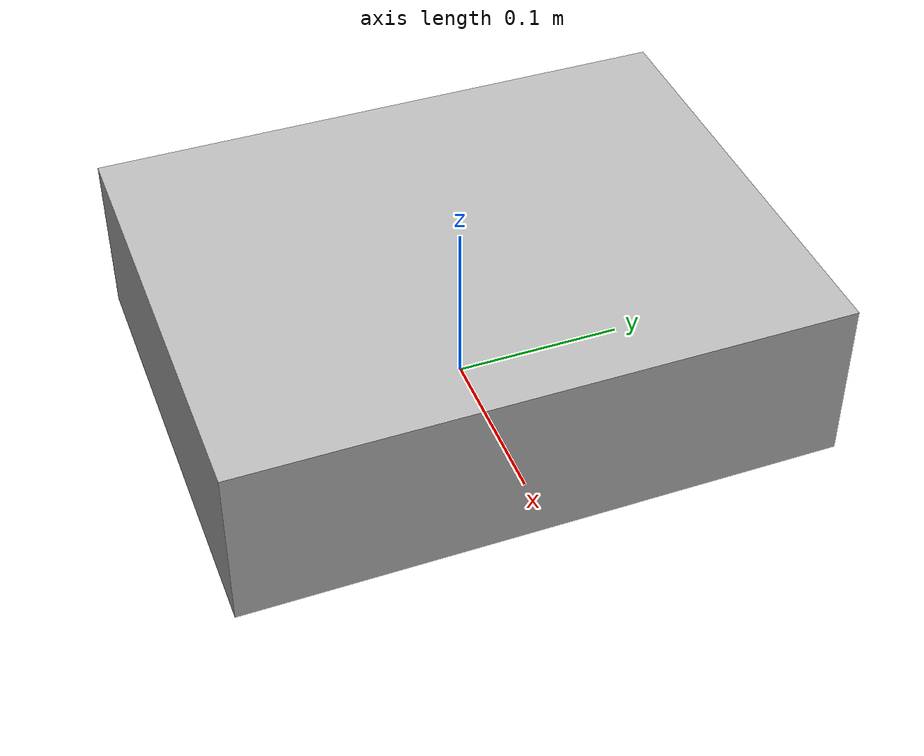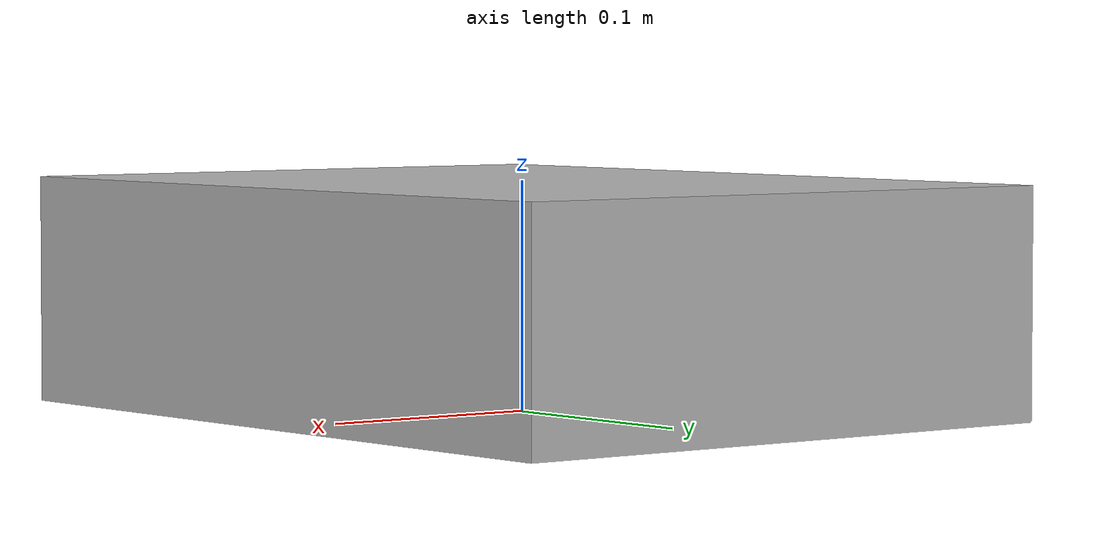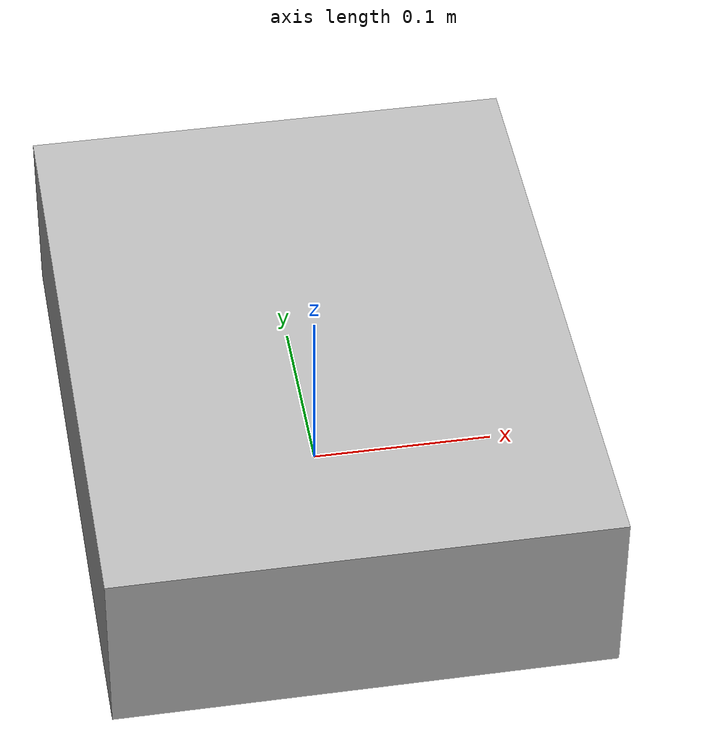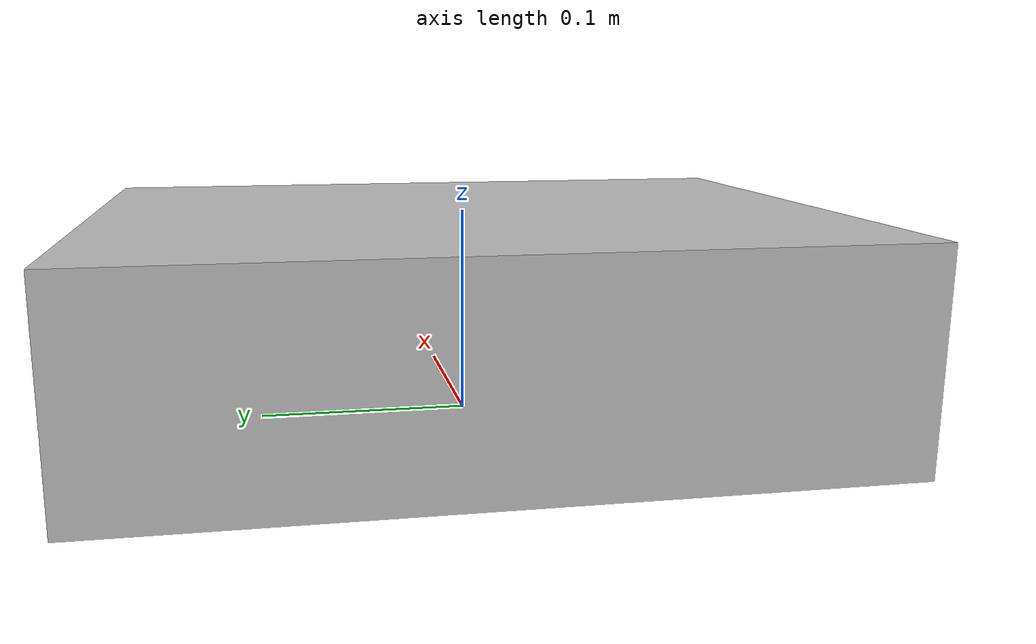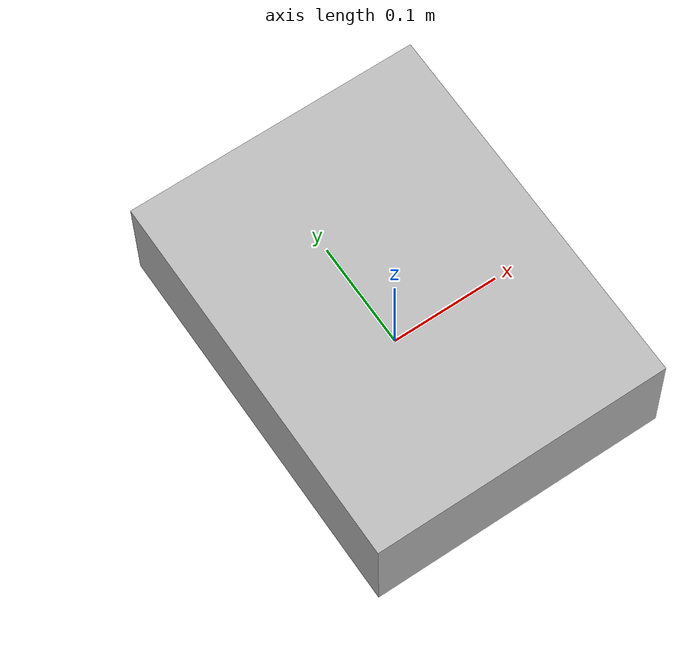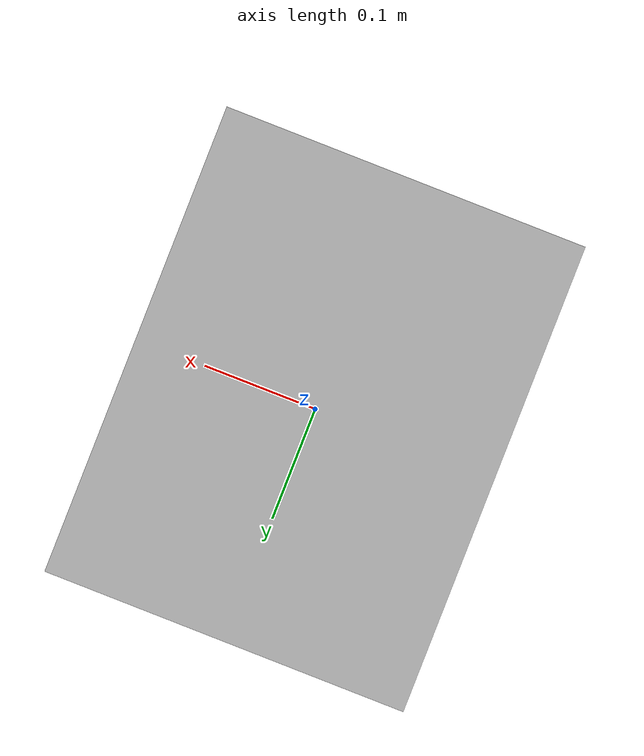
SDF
<?xml version="1.0"?>
<sdf version="1.6">
  <model name="rwc2017/umbrella_holder">
    <link name="1_link">
      <collision name="1_col">
        <geometry>
          <box>
            <size>0.27 0.35 0.1</size>
          </box>
        </geometry>
      </collision>
      <visual name="1_vis">
        <geometry>
          <box>
            <size>0.27 0.35 0.1</size>
          </box>
        </geometry>
      </visual>
      <pose>0 0 0.05 0 0 0</pose>
    </link>
    <link name="in_front_of">
      <virtual_volume name="in_front_of_vv">
        <geometry>
          <box>
            <size>0.2 0.3 0.01</size>
          </box>
        </geometry>
        <pose>0.9 0.0 0.005 0 0 0</pose>
      </virtual_volume>
    </link>
    <static>true</static>
  </model>
</sdf>
